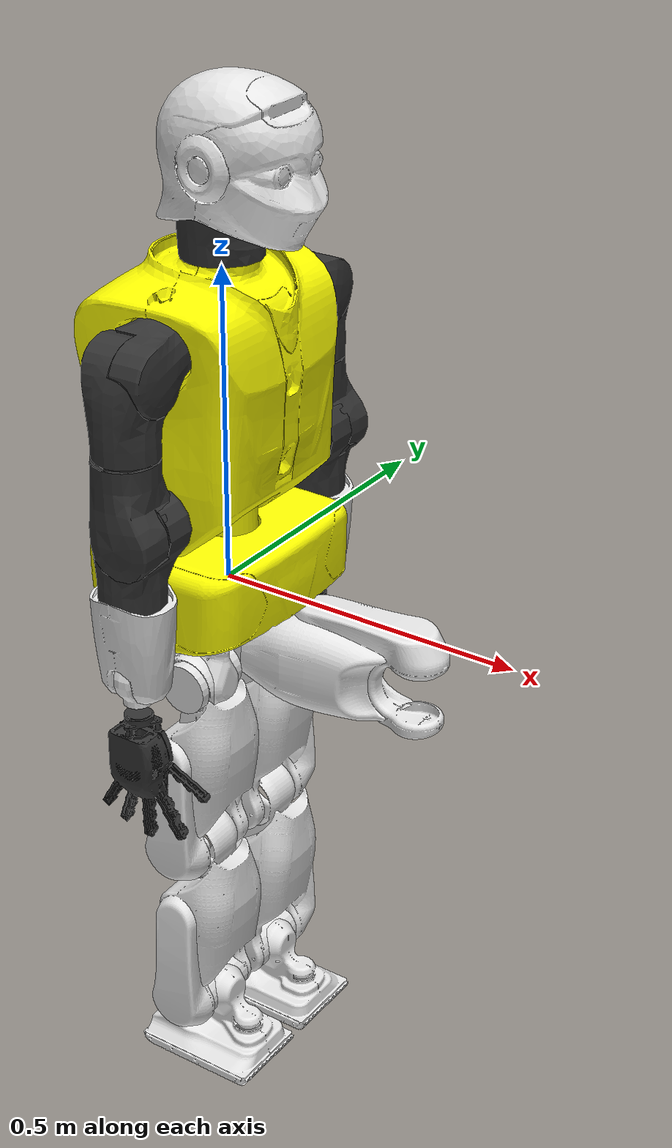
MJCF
<mujoco model="reemc">
  <compiler angle="radian" autolimits="true" />

  <option iterations="4" ls_iterations="5" timestep="0.005" integrator="implicitfast">
    <flag eulerdamp="disable"/>
  </option>

  <statistic meansize="0.180187" extent="1.90209" center="-0.0262366 -0.10168 -0.0562266"/>

  <asset>
    <mesh name="base_hcrmi" file="assets/base/base_hcrmi.stl"/>
    <mesh name="right_leg_1_hcrmi" file="assets/leg/right_leg_1_hcrmi_90.stl"/>
    <mesh name="right_leg_3_hcrmi" file="assets/leg/right_leg_3_hcrmi_-90.stl"/>
    <mesh name="right_leg_4_hcrmi" file="assets/leg/right_leg_4_hcrmi_-90.stl"/>
    <mesh name="right_leg_6_hcrmi" file="assets/leg/right_leg_6_hcrmi_-90.stl"/>
    <mesh name="left_leg_1_hcrmi" file="assets/leg/left_leg_1_hcrmi_90.stl"/>
    <mesh name="left_leg_3_hcrmi" file="assets/leg/left_leg_3_hcrmi_90.stl"/>
    <mesh name="left_leg_4_hcrmi" file="assets/leg/left_leg_4_hcrmi_90.stl"/>
    <mesh name="left_leg_6_hcrmi" file="assets/leg/left_leg_6_hcrmi_90.stl"/>
    <mesh name="torso_1_hcrmi" file="assets/torso/torso_1_hcrmi.stl"/>
    <mesh name="torso_2" file="assets/torso/torso_2.stl"/>
    <mesh name="torso_2_collision" file="assets/torso/torso_2_collision.stl"/>
    <mesh name="head_1" file="assets/head/head_1.stl"/>
    <mesh name="head_2_v1_hcrmi" file="assets/head/head_2_v1_hcrmi.stl"/>
    <mesh name="right_arm_1" file="assets/arm/right_arm_1.stl"/>
    <mesh name="right_arm_2" file="assets/arm/right_arm_2.stl"/>
    <mesh name="right_arm_3" file="assets/arm/right_arm_3.stl"/>
    <mesh name="right_arm_4" file="assets/arm/right_arm_4.stl"/>
    <mesh name="right_arm_5" file="assets/arm/right_arm_5.stl"/>
    <mesh name="right_arm_6" file="assets/arm/right_arm_6.stl"/>
    <mesh name="left_arm_1" file="assets/arm/left_arm_1.stl"/>
    <mesh name="left_arm_2" file="assets/arm/left_arm_2.stl"/>
    <mesh name="left_arm_3" file="assets/arm/left_arm_3.stl"/>
    <mesh name="left_arm_4" file="assets/arm/left_arm_4.stl"/>
    <mesh name="left_arm_5" file="assets/arm/left_arm_5.stl"/>
    <mesh name="left_arm_6" file="assets/arm/left_arm_6.stl"/>
    <mesh name="right_hand_hey5_orientation" file="assets/hey5_hand/right_hand_hey5_orientation_90.stl"/>
    <mesh name="left_hand_hey5_orientation" file="assets/hey5_hand/left_hand_hey5_orientation_90.stl"/>
  </asset>

  <default>
    <equality solref="0.005 1" solimp="0.99 0.999 0.00001"/>
    <joint damping="10.0" armature="1.0" frictionloss="10.0"/>
    <geom condim="1" margin="0.000500" solref="0.005 1"/>
    <default class="visual">
      <geom contype="0" conaffinity="0" group="1"/>
    </default>
    <default class="collision">
      <geom group="3" contype="1" conaffinity="1"/>
    </default>
    <default class="legs">
      <joint damping="2.0" armature="0.5" frictionloss="2.0"/>
    </default>
    <default class="torso">
      <joint damping="4.0" armature="1.0" frictionloss="4.0"/>
    </default>
    <default class="head">
      <joint damping="0.4" armature="0.05" frictionloss="0.4"/>
    </default>
    <default class="arms">
      <joint damping="2.0" armature="0.5" frictionloss="2.0"/>
    </default>
    <default class="wrists">
      <joint damping="0.4" armature="0.05" frictionloss="0.4"/>
    </default>

  </default>

  <worldbody>
    <body name="base_link"  pos="0 0 0">
    <camera name="track" pos="1.269 -2.1975 0.7" xyaxes="0.866 0.500 0.000 -0.171 0.296 0.940" mode="trackcom"/>
    <freejoint name="reference" />
    <inertial pos="-0.029021 -0.0018945 0.018427" mass="14.89" fullinertia="0.026081 0.022992 0.038521 0.00013572 0.0011164 -0.00010555"/>
    <geom type="mesh" density="0" rgba="1 1 0 1" class="visual" mesh="base_hcrmi"/>
    <geom size="0.005 0.005 0.005" quat="0 1 0 0" type="box" class="visual" density="0"/>
    <site name="imu_in_pelvis" size="0.01"/>
    <body name="leg_right_1_link" pos="0 -0.075 -0.14353">
      <inertial pos="-0.02571 0 0.02557" quat="0.684011 -0.180052 -0.180447 0.683483" mass="1.02901" diaginertia="0.00185286 0.00154865 0.00061554"/>
      <joint name="leg_right_1_joint" pos="0 0 0" axis="0 0 1" range="-0.523599 0.785398" actuatorfrcrange="-127 127" class="legs"/>
      <geom type="mesh" density="0" rgba="0.9 0.9 0.9 1" class="visual" mesh="right_leg_1_hcrmi"/>
      <body name="leg_right_2_link" quat="0.707107 0 0.707107 0">
        <inertial pos="0.00057 -0.00881 -0.01125" quat="0.663012 0.62245 -0.287425 0.300596" mass="0.69621" diaginertia="0.000849185 0.000836049 0.000396329"/>
        <joint name="leg_right_2_joint" pos="0 0 0" axis="0 0 1" range="-0.523599 0.261799" actuatorfrcrange="-76 76" class="legs"/>
        <geom size="0.04 0.05" quat="0.707107 0.707107 0 0" type="cylinder" class="visual" density="0" rgba="0.9 0.9 0.9 1"/>
        <body name="leg_right_3_link" quat="0.707107 -0.707107 0 0">
          <inertial pos="0.1521 -0.0094 -0.0152" quat="0.513091 0.477407 0.468837 0.537599" mass="4.82" diaginertia="0.028508 0.0265593 0.00483643"/>
          <joint name="leg_right_3_joint" pos="0 0 0" axis="0 0 1" range="-1.74533 0.785398" actuatorfrcrange="-127 127" class="legs"/>
          <geom type="mesh" density="0" rgba="0.9 0.9 0.9 1" class="visual" mesh="right_leg_3_hcrmi"/>
          <geom name="right_thigh_collision" size="0.075 0.05 0.1" pos="0.15 0 -0.015" quat="0.707107 0 0.707107 0" type="box" rgba="0.9 0.9 0.9 1" class="collision"/>
          <body name="leg_right_4_link" pos="0.3 0 0">
            <inertial pos="0.1368 0.0099 -0.0173" quat="0.468364 0.534198 0.50606 0.489052" mass="3.35" diaginertia="0.0247116 0.0228521 0.00347608"/>
            <joint name="leg_right_4_joint" pos="0 0 0" axis="0 0 1" range="0 2.61799" actuatorfrcrange="-284 284" class="legs"/>
            <geom type="mesh" density="0" rgba="0.9 0.9 0.9 1" class="visual" mesh="right_leg_4_hcrmi"/>
            <geom name="right_shank_collision" size="0.075 0.05 0.1" pos="0.15 0 -0.015" quat="0.707107 0 -0.707107 0" type="box" rgba="0.9 0.9 0.9 1" class="collision"/>
            <body name="leg_right_5_link" pos="0.3 0 0">
              <inertial pos="-0.00028 0.01119 -0.00859" quat="0.756273 -0.0261497 0.0192015 0.653452" mass="0.68213" diaginertia="0.000822664 0.000820312 0.000374255"/>
              <joint name="leg_right_5_joint" pos="0 0 0" axis="0 0 1" range="-1.309 0.785398" actuatorfrcrange="-147 147" class="legs"/>
              <geom size="0.04 0.052" type="cylinder" class="visual" density="0" rgba="0.9 0.9 0.9 1"/>
              <body name="leg_right_6_link" quat="0.707107 0.707107 0 0">
                <inertial pos="0.0611293 -0.00336163 -0.00492278" quat="0.757817 -0.221787 -0.294889 0.538113" mass="2.01043" diaginertia="0.0054609 0.00468113 0.00252451"/>
                <joint name="leg_right_6_joint" pos="0 0 0" axis="0 0 1" range="-0.261799 0.523599" actuatorfrcrange="-76 76" class="legs"/>
                <geom type="mesh" density="0" rgba="0.9 0.9 0.9 1" class="visual" mesh="right_leg_6_hcrmi"/>
                <geom name="right_foot_collision" size="0.015 0.07 0.105" pos="0.102 -0.01 0.0195" type="box" rgba="0.9 0.9 0.9 1" class="collision"/>
                <!-- Original sole site -->
                <site name="right_foot_sole" size="0.01" pos="0.117 0 0" quat="0.707 0 -0.707 0"/>
                <!-- Centered sole site -->
              </body>
            </body>
          </body>
        </body>
      </body>
    </body>
     <body name="leg_left_1_link" pos="0 0.075 -0.14353">
      <inertial pos="-0.02571 0 0.02557" quat="0.684  -0.180 -0.180 0.684" mass="1.02901" diaginertia="0.00185286 0.00154865 0.00061554"/>
      <joint name="leg_left_1_joint" pos="0 0 0" axis="0 0 1" range="-0.785398 0.523599" actuatorfrcrange="-127 127" class="legs"/>
      <geom type="mesh" density="0" rgba="0.9 0.9 0.9 1" class="visual" mesh="left_leg_1_hcrmi"/>
      <body name="leg_left_2_link" quat="0.707107 0 0.707107 0">
        <inertial pos="0.00057 0.00881 -0.01125" quat="0.625  0.661 -0.305  0.283" mass="0.69621" diaginertia="0.000849185 0.000836049 0.000396329"/>
        <joint name="leg_left_2_joint" pos="0 0 0" axis="0 0 1" range="-0.261799 0.523599" actuatorfrcrange="-76 76" class="legs"/>
        <geom size="0.04 0.05" quat="0.707107 0.707107 0 0" type="cylinder" class="visual" density="0" rgba="0.9 0.9 0.9 1"/>
        <body name="leg_left_3_link" quat="0.707107 -0.707107 0 0">
          <inertial pos="0.1521 -0.0094 0.0152" quat="0.469 0.538 0.513 0.477" mass="4.82" diaginertia="0.028508 0.0265593 0.00483643"/>
          <joint name="leg_left_3_joint" pos="0 0 0" axis="0 0 1" range="-1.74533 0.785398" actuatorfrcrange="-127 127" class="legs"/>
          <geom type="mesh" density="0" rgba="0.9 0.9 0.9 1" class="visual" mesh="left_leg_3_hcrmi"/>
          <geom name="left_thigh_collision" size="0.075 0.05 0.1" pos="0.15 0 0.015" quat="0.707107 0 0.707107 0" type="box" rgba="0.9 0.9 0.9 1" class="collision"/>
          <body name="leg_left_4_link" pos="0.3 0 0">
            <inertial pos="0.1368 0.0099 0.0173" quat="0.506 0.489 0.468 0.534" mass="3.35" diaginertia="0.0247116 0.0228521 0.00347608"/>
            <joint name="leg_left_4_joint" pos="0 0 0" axis="0 0 1" range="0 2.61799" actuatorfrcrange="-284 284" class="legs"/>
            <geom type="mesh" density="0" rgba="0.9 0.9 0.9 1" class="visual" mesh="left_leg_4_hcrmi"/>
            <geom name="left_shank_collision" size="0.075 0.05 0.1" pos="0.15 0 0.015" quat="0.707107 0 0.707107 0" type="box" rgba="0.9 0.9 0.9 1" class="collision"/>
            <body name="leg_left_5_link" pos="0.3 0 0">
              <inertial pos="-0.00028 0.01119 0.00859" quat="0.755 0.022 -0.023 0.655" mass="0.68213" diaginertia="0.000822664 0.000820312 0.000374255"/>
              <joint name="leg_left_5_joint" pos="0 0 0" axis="0 0 1" range="-1.309 0.785398" actuatorfrcrange="-147 147" class="legs"/>
              <geom size="0.04 0.052" type="cylinder" class="visual" density="0" rgba="0.9 0.9 0.9 1"/>
              <body name="leg_left_6_link" quat="0.707107 0.707107 0 0">
                <inertial pos="0.0611293 0.00336163 -0.00492278" quat="0.535 -0.307 -0.205  0.760" mass="2.01043" diaginertia="0.00545397 0.00468799 0.00252459"/>
                <joint name="leg_left_6_joint" pos="0 0 0" axis="0 0 1" range="-0.523599 0.261799" actuatorfrcrange="-76 76" class="legs"/>
                <geom type="mesh" density="0" rgba="0.9 0.9 0.9 1" class="visual" mesh="left_leg_6_hcrmi"/>
                <geom name="left_foot_collision" size="0.015 0.07 0.105" pos="0.102 0.01 0.0195" type="box" rgba="0.9 0.9 0.9 1" class="collision"/>
                <!-- Original sole site -->
                <site name="left_foot_sole" size="0.01" pos="0.117 0 0" quat="0.707 0 -0.707 0"/>
                <!-- Centered sole site -->
              </body>
            </body>
          </body>
        </body>
      </body>
    </body>
    <body name="torso_1_link" pos="0 0 0.14353">
      <inertial pos="-0.00011 -2e-05 -0.00669" quat="-0.00053298 0.707875 0.000527495 0.706337" mass="1.58341" diaginertia="0.000905881 0.00082439 0.000716059"/>
      <joint name="torso_1_joint" pos="0 0 0" axis="0 0 1" range="-1.309 1.309" actuatorfrcrange="-108 108" class="torso"/>
      <geom quat="0.707107 0.707107 0 0" type="mesh" density="0" rgba="1 1 0 1" class="visual" mesh="torso_1_hcrmi"/>
      <body name="torso_2_link" quat="0.707107 -0.707107 0 0">
        <inertial pos="-0.0182908 -0.149786 0.00159967" quat="0.996305 0.0110612 0.00590872 0.0849702" mass="14.623" diaginertia="0.0260666 0.0240187 0.0182516"/>
        <joint name="torso_2_joint" pos="0 0 0" axis="0 0 1" range="-0.261799 0.785398" actuatorfrcrange="-108 108" class="torso"/>
        <geom type="mesh" density="0" rgba="1 1 0 1" class="visual" mesh="torso_2"/>
        <site name="imu_in_torso" size="0.01" pos="0 -0.31827 0" quat="0.707107 0.707107 0 0"/>
        <body name="head_1_link" pos="0 -0.42316 0" quat="0.707107 0.707107 0 0">
          <inertial pos="0.014823 -0.000253 -0.008383" quat="0.685411 -0.106827 -0.0683157 0.717031" mass="0.646763" diaginertia="0.00127359 0.00117787 0.00112854"/>
          <joint name="head_1_joint" pos="0 0 0" axis="0 0 1" range="-1.309 1.309" actuatorfrcrange="-4 4" class="head"/>
          <geom pos="-0.03 0 0" type="mesh" density="0" rgba="0.2 0.2 0.2 1" class="visual" mesh="head_1"/>
          <body name="head_2_link" pos="0.0445 0 0" quat="0.707107 -0.707107 0 0">
            <inertial pos="-0.0238357 -0.100693 0.000293681" quat="0.426543 0.524232 0.502197 0.539481" mass="0.921999" diaginertia="0.00645201 0.00623726 0.0060774"/>
            <joint name="head_2_joint" pos="0 0 0" axis="0 0 1" range="-0.261799 0.785398" actuatorfrcrange="-4 4" class="head"/>
            <geom type="mesh" density="0" rgba="0.9 0.9 0.9 1" class="visual" mesh="head_2_v1_hcrmi"/>
          </body>
        </body>
        <body name="arm_right_1_link" pos="0 -0.31827 0" quat="0.130526 -0.991445 0 0">
          <inertial pos="0.00701 -0.00011 0.18627" quat="0.992396 -0.0211113 -0.121254 -0.00108005" mass="1.53614" diaginertia="0.00217753 0.00157498 0.00147279"/>
          <joint name="arm_right_1_joint" pos="0 0 0" axis="0 0 1" range="-0.785398 3.14159" actuatorfrcrange="-54 54" class="arms"/>
          <geom type="mesh" density="0" rgba="0.2 0.2 0.2 1" class="visual" mesh="right_arm_1"/>
          <body name="arm_right_2_link" pos="0 0 0.21749" quat="0.701057 -0.092296 -0.701057 0.092296">
            <inertial pos="0.0252 -0.0627 0.0175" quat="0.385746 0.565891 -0.275467 0.6746" mass="1.66" diaginertia="0.00251775 0.00192164 0.00163202"/>
            <joint name="arm_right_2_joint" pos="0 0 0" axis="0 0 1" range="-0.261799 2.0944" actuatorfrcrange="-54 54" class="arms"/>
            <geom type="mesh" density="0" rgba="0.2 0.2 0.2 1" class="visual" mesh="right_arm_2"/>
            <body name="arm_right_3_link" pos="0.02 -0.142 0" quat="0.707107 0.707107 0 0">
              <inertial pos="0.0024 -0.0245 0.0573" quat="0.400625 0.906586 -0.0279705 0.129689" mass="1.71" diaginertia="0.00270956 0.00216022 0.00189812"/>
              <joint name="arm_right_3_joint" pos="0 0 0" axis="0 0 1" range="-2.35619 2.74889" actuatorfrcrange="-54 54" class="arms"/>
              <geom type="mesh" density="0" rgba="0.2 0.2 0.2 1" class="visual" mesh="right_arm_3"/>
              <body name="arm_right_4_link" pos="0 -0.02 0.088" quat="0.707107 0 0.707107 0">
                <inertial pos="-0.0342 0.0241 -0.0165" quat="0.136295 0.631892 -0.106939 0.755447" mass="1.27" diaginertia="0.0022479 0.0016142 0.00120249"/>
                <joint name="arm_right_4_joint" pos="0 0 0" axis="0 0 1" range="0 2.26893" actuatorfrcrange="-54 54" class="arms"/>
                <geom type="mesh" density="0" rgba="0.2 0.2 0.2 1" class="visual" mesh="right_arm_4"/>
                <body name="arm_right_5_link" pos="-0.088 0.02 0" quat="0.707107 0 -0.707107 0">
                  <inertial pos="0.0067 0.0071 0.0705" quat="0.999997 0.000432696 -0.00225043 -0.000372116" mass="1.23" diaginertia="0.00115561 0.00091494 0.00065798"/>
                  <joint name="arm_right_5_joint" pos="0 0 0" axis="0 0 1" range="-2.0944 2.0944" actuatorfrcrange="-3.5 3.5" class="wrists"/>
                  <geom type="mesh" density="0" rgba="0.9 0.9 0.9 1" class="visual" mesh="right_arm_5"/>
                  <body name="arm_right_6_link" pos="0 0 0.15" quat="0.707107 -0.707107 0 0">
                    <inertial pos="-5e-05 -0.00252 7e-05" quat="0.698869 0.714669 -0.0205749 0.0201625" mass="0.41597" diaginertia="3.65187e-05 3.42051e-05 2.67032e-05"/>
                    <joint name="arm_right_6_joint" pos="0 0 0" axis="0 0 1" range="-1.41372 1.41372" actuatorfrcrange="-7 7" class="wrists"/>
                    <geom type="mesh" density="0" rgba="0.9 0.9 0.9 1" class="visual" mesh="right_arm_6"/>
                    <body name="arm_right_7_link" quat="0.707107 0.707107 0 0">
                      <inertial pos="0.00138723 -0.00133589 0.0950026" quat="0.999612 0.00546834 0.00841116 0.0259986" mass="1.08326" diaginertia="0.00373975 0.00358237 0.000311991"/>
                      <joint name="arm_right_7_joint" pos="0 0 0" axis="0 0 1" range="-2.0944 2.0944" actuatorfrcrange="-7 7" class="wrists"/>
                      <body name="right_hand_body" pos="-0.02 0 0.166575" quat="0.5 0.5 -0.5 0.5">
                        <site name="right_palm"/>
                        <geom name="right_hand" pos="-0.1 -0.02 0" type="mesh" density="0" rgba="0.2 0.2 0.2 1" class="visual" mesh="right_hand_hey5_orientation"/>
                        <!-- Full mesh collision -->
                        <!-- Simplified box collision -->
                        <geom name="right_hand_collision" pos="0.01 -0.025 0.015" type="box" size="0.115 0.03 0.1" rgba="0.2 0.2 0.2 1" class="collision"/>
                      </body>
                    </body>
                  </body>
                </body>
              </body>
            </body>
          </body>
        </body>
        <body name="arm_left_1_link" pos="0 -0.31827 0" quat="0.130526 0.991445 0 0">
          <inertial pos="0.00701 -0.00011 -0.18627" quat="0.992396 -0.0211113 -0.121254 -0.00108005" mass="1.53614" diaginertia="0.00217753 0.00157498 0.00147279"/>
          <joint name="arm_left_1_joint" pos="0 0 0" axis="0 0 1" range="-0.785398 3.14159" actuatorfrcrange="-54 54" class="arms"/>
          <geom type="mesh" density="0" rgba="0.2 0.2 0.2 1" class="visual" mesh="left_arm_1"/>
          <body name="arm_left_2_link" pos="0 0 -0.21749" quat="0.701057 0.092296 0.701057 0.092296">
            <inertial pos="0.0252 -0.0627 -0.0175" quat="0.385746 0.565891 -0.275467 0.6746" mass="1.66" diaginertia="0.00251775 0.00192164 0.00163202"/>
            <joint name="arm_left_2_joint" pos="0 0 0" axis="0 0 1" range="-0.261799 2.0944" actuatorfrcrange="-54 54" class="arms"/>
            <geom type="mesh" density="0" rgba="0.2 0.2 0.2 1" class="visual" mesh="left_arm_2"/>
            <body name="arm_left_3_link" pos="0.02 -0.142 0" quat="0.707107 -0.707107 0 0">
              <inertial pos="0.0024 -0.0245 -0.0573" quat="0.400625 0.906586 -0.0279705 0.129689" mass="1.71" diaginertia="0.00270956 0.00216022 0.00189812"/>
              <joint name="arm_left_3_joint" pos="0 0 0" axis="0 0 1" range="-2.35619 2.74889" actuatorfrcrange="-54 54" class="arms"/>
              <geom type="mesh" density="0" rgba="0.2 0.2 0.2 1" class="visual" mesh="left_arm_3"/>
              <body name="arm_left_4_link" pos="0 -0.02 -0.088" quat="0.707107 0 -0.707107 0">
                <inertial pos="-0.0342 0.0241 0.0165" quat="0.136295 0.631892 -0.106939 0.755447" mass="1.27" diaginertia="0.0022479 0.0016142 0.00120249"/>
                <joint name="arm_left_4_joint" pos="0 0 0" axis="0 0 1" range="0 2.26893" actuatorfrcrange="-54 54" class="arms"/>
                <geom type="mesh" density="0" rgba="0.2 0.2 0.2 1" class="visual" mesh="left_arm_4"/>
                <body name="arm_left_5_link" pos="-0.088 0.02 0" quat="0.707107 0 0.707107 0">
                  <inertial pos="0.0067 0.0071 -0.0705" quat="0.999997 0.000432696 -0.00225043 -0.000372116" mass="1.23" diaginertia="0.00115561 0.00091494 0.00065798"/>
                  <joint name="arm_left_5_joint" pos="0 0 0" axis="0 0 1" range="-2.0944 2.0944" actuatorfrcrange="-3.5 3.5" class="wrists"/>
                  <geom type="mesh" density="0" rgba="0.9 0.9 0.9 1" class="visual" mesh="left_arm_5"/>
                  <body name="arm_left_6_link" pos="0 0 -0.15" quat="0.707107 0.707107 0 0">
                    <inertial pos="-5e-05 -0.00252 -7e-05" quat="0.698869 0.714669 -0.0205749 0.0201625" mass="0.41597" diaginertia="3.65187e-05 3.42051e-05 2.67032e-05"/>
                    <joint name="arm_left_6_joint" pos="0 0 0" axis="0 0 1" range="-1.41372 1.41372" actuatorfrcrange="-7 7" class="wrists"/>
                    <geom type="mesh" density="0" rgba="0.9 0.9 0.9 1" class="visual" mesh="left_arm_6"/>
                    <body name="arm_left_7_link" quat="0.707107 -0.707107 0 0">
                      <inertial pos="0.00138723 0.00131126 -0.0950026" quat="0.999611 0.00597581 -0.00840651 -0.0259296" mass="1.08326" diaginertia="0.00373982 0.00358245 0.000311987"/>
                      <joint name="arm_left_7_joint" pos="0 0 0" axis="0 0 1" range="-2.0944 2.0944" actuatorfrcrange="-7 7" class="wrists"/>
                      <body name="left_hand_body" pos="-0.02 0 -0.166575" quat="-0.5 0.5 -0.5 -0.5">
                        <site name="left_palm"/>
                        <geom name="left_hand" pos="-0.1 -0.02 0" type="mesh" density="0" rgba="0.2 0.2 0.2 1" class="visual" mesh="left_hand_hey5_orientation"/>
                        <!-- Full mesh collision -->
                        <!-- Simplified box collision -->
                        <geom name="left_hand_collision" pos="0.01 -0.025 -0.015" type="box" size="0.115 0.03 0.1" rgba="0.2 0.2 0.2 1" class="collision"/>
                      </body>
                    </body>
                  </body>
                </body>
              </body>
            </body>
          </body>
        </body>
      </body>
    </body>
    </body>
  </worldbody>

  <sensor>
    <gyro name="imu_ang_vel" site="imu_in_pelvis"/>
    <velocimeter name="imu_lin_vel" site="imu_in_pelvis"/>
    <accelerometer name="imu_lin_acc" site="imu_in_pelvis"/>
    <subtreeangmom name="root_angmom" body="base_link"/>
  </sensor>

</mujoco>
